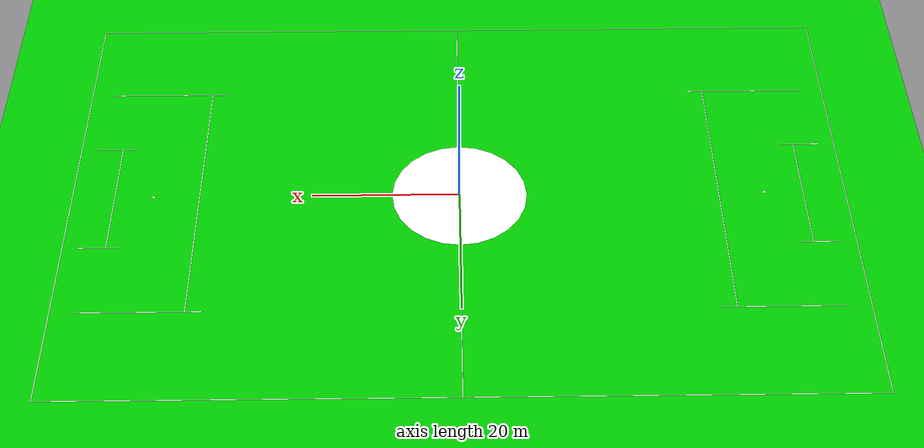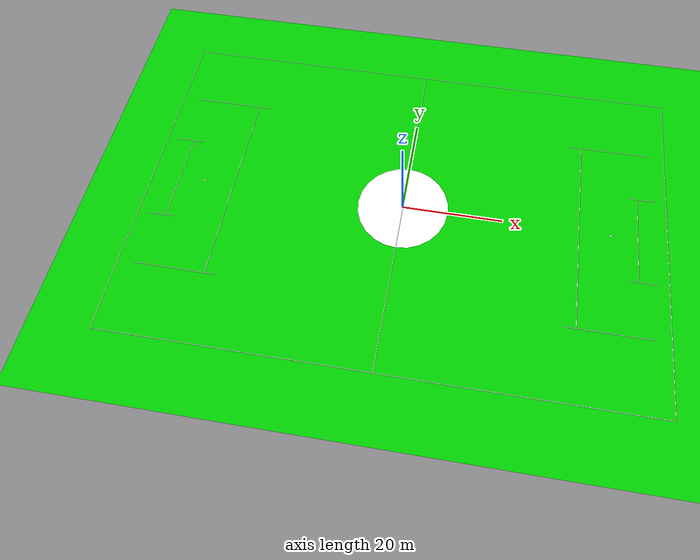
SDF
<sdf version="1.9">
 <world name="ros_gz">
  <physics name="1ms" type="ode">
   <max_step_size>0.001</max_step_size>
   <real_time_factor>1.0</real_time_factor>
  </physics>
  <spherical_coordinates>
   <surface_model>EARTH_WGS84</surface_model>
   <world_frame_orientation>ENU</world_frame_orientation>
   <latitude_deg>-22.8567</latitude_deg>
   <longitude_deg>-47.0589</longitude_deg>
   <elevation>580.0</elevation>
   <heading_deg>0.0</heading_deg>
  </spherical_coordinates>
  <plugin filename="ignition-gazebo-physics-system" name="ignition::gazebo::systems::Physics"/>
  <plugin filename="ignition-gazebo-user-commands-system" name="ignition::gazebo::systems::UserCommands"/>
  <plugin filename="ignition-gazebo-navsat-system" name="ignition::gazebo::systems::NavSat"/>
  <plugin filename="ignition-gazebo-sensors-system" name="ignition::gazebo::systems::Sensors">
   <render_engine>ogre2</render_engine>
  </plugin>
  <plugin filename="ignition-gazebo-scene-broadcaster-system" name="ignition::gazebo::systems::SceneBroadcaster"/>
  <light type="directional" name="sun">
   <pose>0 0 10 0 0 0</pose>
   <diffuse>0.8 0.8 0.8 1</diffuse>
   <specular>0.2 0.2 0.2 1</specular>
   <attenuation>
    <range>1000</range>
    <constant>0.9</constant>
    <linear>0.01</linear>
    <quadratic>0.001</quadratic>
   </attenuation>
   <direction>-0.5 0.1 -0.9</direction>
  </light>
  <model name="FIFA Football Field">
   <static>true</static>
   <link name="field">
    <pose>0 0 0.01 0 0 0</pose>
    <collision name="collision">
     <geometry><plane><normal>0 0 1</normal><size>105 68</size></plane></geometry>
     <surface><friction><ode><mu>100</mu><mu2>50</mu2></ode></friction></surface>
    </collision>
    <visual name="grass_field">
     <cast_shadows>false</cast_shadows>
     <geometry><plane><normal>0 0 1</normal><size>105 68</size></plane></geometry>
     <material><ambient>0 0.6 0 1</ambient><diffuse>0 0.8 0 1</diffuse></material>
    </visual>
    <visual name="sideline_1">
     <pose>0 34 0.011 0 0 0</pose>
     <cast_shadows>false</cast_shadows>
     <geometry><plane><normal>0 0 1</normal><size>105 0.12</size></plane></geometry>
     <material><ambient>1 1 1 1</ambient><diffuse>1 1 1 1</diffuse></material>
    </visual>
    <visual name="sideline_2">
     <pose>0 -34 0.011 0 0 0</pose>
     <cast_shadows>false</cast_shadows>
     <geometry><plane><normal>0 0 1</normal><size>105 0.12</size></plane></geometry>
     <material><ambient>1 1 1 1</ambient><diffuse>1 1 1 1</diffuse></material>
    </visual>
    <visual name="goal_line_1">
     <pose>-52.5 0 0.011 0 0 0</pose>
     <cast_shadows>false</cast_shadows>
     <geometry><plane><normal>0 0 1</normal><size>0.12 68</size></plane></geometry>
     <material><ambient>1 1 1 1</ambient><diffuse>1 1 1 1</diffuse></material>
    </visual>
    <visual name="goal_line_2">
     <pose>52.5 0 0.011 0 0 0</pose>
     <cast_shadows>false</cast_shadows>
     <geometry><plane><normal>0 0 1</normal><size>0.12 68</size></plane></geometry>
     <material><ambient>1 1 1 1</ambient><diffuse>1 1 1 1</diffuse></material>
    </visual>
    <visual name="center_line">
     <pose>0 0 0.011 0 0 0</pose>
     <cast_shadows>false</cast_shadows>
     <geometry><plane><normal>0 0 1</normal><size>0.12 68</size></plane></geometry>
     <material><ambient>1 1 1 1</ambient><diffuse>1 1 1 1</diffuse></material>
    </visual>
    <visual name="center_circle">
     <pose>0 0 0.005 0 0 0</pose>
     <cast_shadows>false</cast_shadows>
     <geometry><cylinder><radius>9.15</radius><length>0.0005</length></cylinder></geometry>
     <material><ambient>1 1 1 1</ambient><diffuse>1 1 1 1</diffuse></material>
    </visual>
    <visual name="center_point">
     <pose>0 0 0.01 0 0 0</pose>
     <cast_shadows>false</cast_shadows>
     <geometry><cylinder><radius>0.2</radius><length>0.0005</length></cylinder></geometry>
     <material><ambient>1 1 1 1</ambient><diffuse>1 1 1 1</diffuse></material>
    </visual>
    <visual name="penalty_area_1">
     <pose>-35.25 0 0.011 0 0 0</pose>
     <cast_shadows>false</cast_shadows>
     <geometry><plane><normal>0 0 1</normal><size>0.12 40.3</size></plane></geometry>
     <material><ambient>1 1 1 1</ambient><diffuse>1 1 1 1</diffuse></material>
    </visual>
    <visual name="penalty_area_1_top">
     <pose>-41.28 20.15 0.011 0 0 0</pose>
     <cast_shadows>false</cast_shadows>
     <geometry><plane><normal>0 0 1</normal><size>16.5 0.12</size></plane></geometry>
     <material><ambient>1 1 1 1</ambient><diffuse>1 1 1 1</diffuse></material>
    </visual>
    <visual name="penalty_area_1_bottom">
     <pose>-41.28 -20.15 0.011 0 0 0</pose>
     <cast_shadows>false</cast_shadows>
     <geometry><plane><normal>0 0 1</normal><size>16.5 0.12</size></plane></geometry>
     <material><ambient>1 1 1 1</ambient><diffuse>1 1 1 1</diffuse></material>
    </visual>
    <visual name="penalty_area_2">
     <pose>35.25 0 0.011 0 0 0</pose>
     <cast_shadows>false</cast_shadows>
     <geometry><plane><normal>0 0 1</normal><size>0.12 40.3</size></plane></geometry>
     <material><ambient>1 1 1 1</ambient><diffuse>1 1 1 1</diffuse></material>
    </visual>
    <visual name="penalty_area_2_top">
     <pose>41.28 20.15 0.011 0 0 0</pose>
     <cast_shadows>false</cast_shadows>
     <geometry><plane><normal>0 0 1</normal><size>16.5 0.12</size></plane></geometry>
     <material><ambient>1 1 1 1</ambient><diffuse>1 1 1 1</diffuse></material>
    </visual>
    <visual name="penalty_area_2_bottom">
     <pose>41.28 -20.15 0.011 0 0 0</pose>
     <cast_shadows>false</cast_shadows>
     <geometry><plane><normal>0 0 1</normal><size>16.5 0.12</size></plane></geometry>
     <material><ambient>1 1 1 1</ambient><diffuse>1 1 1 1</diffuse></material>
    </visual>
    <visual name="goal_area_1">
     <pose>-46.75 0 0.011 0 0 0</pose>
     <cast_shadows>false</cast_shadows>
     <geometry><plane><normal>0 0 1</normal><size>0.12 18.32</size></plane></geometry>
     <material><ambient>1 1 1 1</ambient><diffuse>1 1 1 1</diffuse></material>
    </visual>
    <visual name="goal_area_1_top">
     <pose>-47.66 9.16 0.011 0 0 0</pose>
     <cast_shadows>false</cast_shadows>
     <geometry><plane><normal>0 0 1</normal><size>5.5 0.12</size></plane></geometry>
     <material><ambient>1 1 1 1</ambient><diffuse>1 1 1 1</diffuse></material>
    </visual>
    <visual name="goal_area_1_bottom">
     <pose>-47.66 -9.16 0.011 0 0 0</pose>
     <cast_shadows>false</cast_shadows>
     <geometry><plane><normal>0 0 1</normal><size>5.5 0.12</size></plane></geometry>
     <material><ambient>1 1 1 1</ambient><diffuse>1 1 1 1</diffuse></material>
    </visual>
    <visual name="goal_area_2">
     <pose>46.75 0 0.011 0 0 0</pose>
     <cast_shadows>false</cast_shadows>
     <geometry><plane><normal>0 0 1</normal><size>0.12 18.32</size></plane></geometry>
     <material><ambient>1 1 1 1</ambient><diffuse>1 1 1 1</diffuse></material>
    </visual>
    <visual name="goal_area_2_top">
     <pose>47.66 9.16 0.011 0 0 0</pose>
     <cast_shadows>false</cast_shadows>
     <geometry><plane><normal>0 0 1</normal><size>5.5 0.12</size></plane></geometry>
     <material><ambient>1 1 1 1</ambient><diffuse>1 1 1 1</diffuse></material>
    </visual>
    <visual name="goal_area_2_bottom">
     <pose>47.66 -9.16 0.011 0 0 0</pose>
     <cast_shadows>false</cast_shadows>
     <geometry><plane><normal>0 0 1</normal><size>5.5 0.12</size></plane></geometry>
     <material><ambient>1 1 1 1</ambient><diffuse>1 1 1 1</diffuse></material>
    </visual>
    <visual name="penalty_spot_1">
     <pose>-41.5 0 0.01 0 0 0</pose>
     <cast_shadows>false</cast_shadows>
     <geometry><cylinder><radius>0.2</radius><length>0.0005</length></cylinder></geometry>
     <material><ambient>1 1 1 1</ambient><diffuse>1 1 1 1</diffuse></material>
    </visual>
    <visual name="penalty_spot_2">
     <pose>41.5 0 0.01 0 0 0</pose>
     <cast_shadows>false</cast_shadows>
     <geometry><cylinder><radius>0.2</radius><length>0.0005</length></cylinder></geometry>
     <material><ambient>1 1 1 1</ambient><diffuse>1 1 1 1</diffuse></material>
    </visual>
   </link>
  </model>
 </world>
</sdf>
